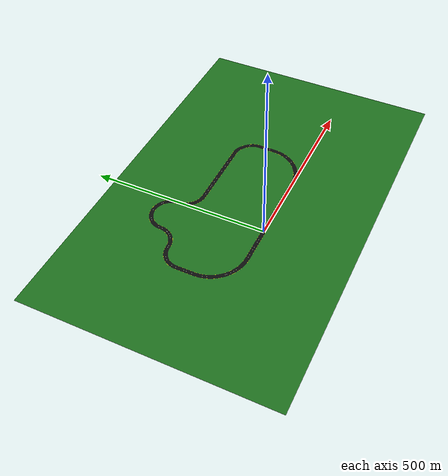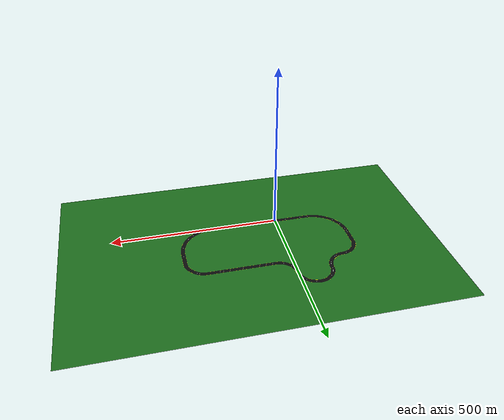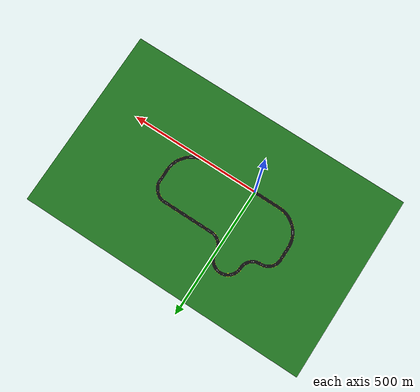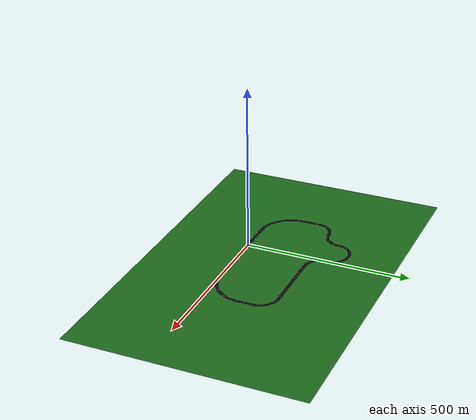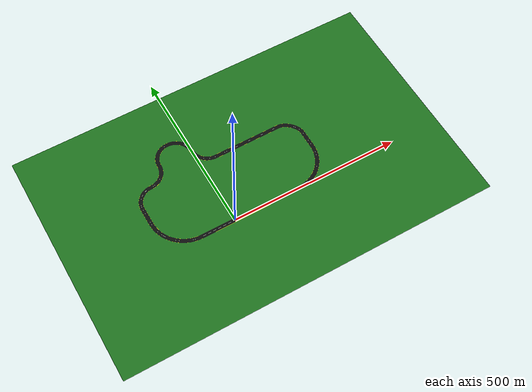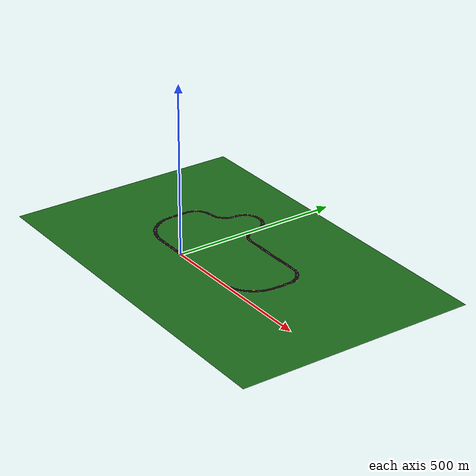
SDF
<sdf version='1.9'>
  <world name='smaller_track'>
    <physics name='1ms' type='ignored'>
      <max_step_size>0.001</max_step_size>
      <real_time_factor>1</real_time_factor>
      <real_time_update_rate>1000</real_time_update_rate>
    </physics>
    <plugin name='gz::sim::systems::Physics' filename='gz-sim-physics-system'/>
    <plugin name='gz::sim::systems::UserCommands' filename='gz-sim-user-commands-system'/>
    <plugin name='gz::sim::systems::SceneBroadcaster' filename='gz-sim-scene-broadcaster-system'/>
    <plugin name='gz::sim::systems::Sensors' filename='gz-sim-sensors-system'>
      <render_engine>ogre2</render_engine>
    </plugin>
    <plugin name='gz::sim::systems::Contact' filename='gz-sim-contact-system'/>
    <plugin name='gz::sim::systems::Imu' filename='gz-sim-imu-system'/>
    <spherical_coordinates>
      <surface_model>EARTH_WGS84</surface_model>
      <world_frame_orientation>ENU</world_frame_orientation>
      <latitude_deg>40.092857</latitude_deg>
      <longitude_deg>-88.235992</longitude_deg>
      <elevation>0</elevation>
      <heading_deg>0</heading_deg>
    </spherical_coordinates>
    <plugin
      filename="libignition-gazebo-navsat-system.so"
      name="ignition::gazebo::systems::NavSat">
    </plugin>
    <gravity>0 0 -9.8000000000000007</gravity>
    <magnetic_field>5.5644999999999998e-06 2.2875799999999999e-05 -4.2388400000000002e-05</magnetic_field>
    <atmosphere type='adiabatic'/>
    <scene>
      <ambient>0.4 0.4 0.4 1</ambient>
      <background>0.7 0.8 0.9 1</background>
      <shadows>true</shadows>
      <grid>false</grid>
      <origin_visual>false</origin_visual>
      <sky>false</sky>
      <fog>false</fog>
      <anisotropic_filtering>16</anisotropic_filtering>
    </scene>
    <include>
      <uri>model://smaller_track</uri>
      <pose>0 0 0 0 0 0</pose>
    </include>
    <light name='sun' type='directional'>
      <pose>0 0 10 0 0 0</pose>
      <cast_shadows>true</cast_shadows>
      <intensity>1</intensity>
      <direction>-0.5 0.10000000000000001 -0.90000000000000002</direction>
      <diffuse>0.800000012 0.800000012 0.800000012 1</diffuse>
      <specular>0.200000003 0.200000003 0.200000003 1</specular>
      <attenuation>
        <range>1000</range>
        <linear>0.0099999997764825821</linear>
        <constant>0.89999997615814209</constant>
        <quadratic>0.0010000000474974513</quadratic>
      </attenuation>
      <spot>
        <inner_angle>0</inner_angle>
        <outer_angle>0</outer_angle>
        <falloff>0</falloff>
      </spot>
    </light>
  </world>
</sdf>

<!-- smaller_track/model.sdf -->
<sdf version="1.9">
  <model name="smaller_track">
    <static>true</static>

    <link name="link">
      <visual name="visual">
        <geometry>
          <mesh>
            <uri>model://smaller_track/meshes/smaller_track.dae</uri>
          </mesh>
        </geometry>
      </visual>

      <collision name="collision">
        <geometry>
          <mesh>
            <uri>model://smaller_track/meshes/smaller_track.dae</uri>
          </mesh>
        </geometry>
      </collision>
    </link>
  </model>
</sdf>
